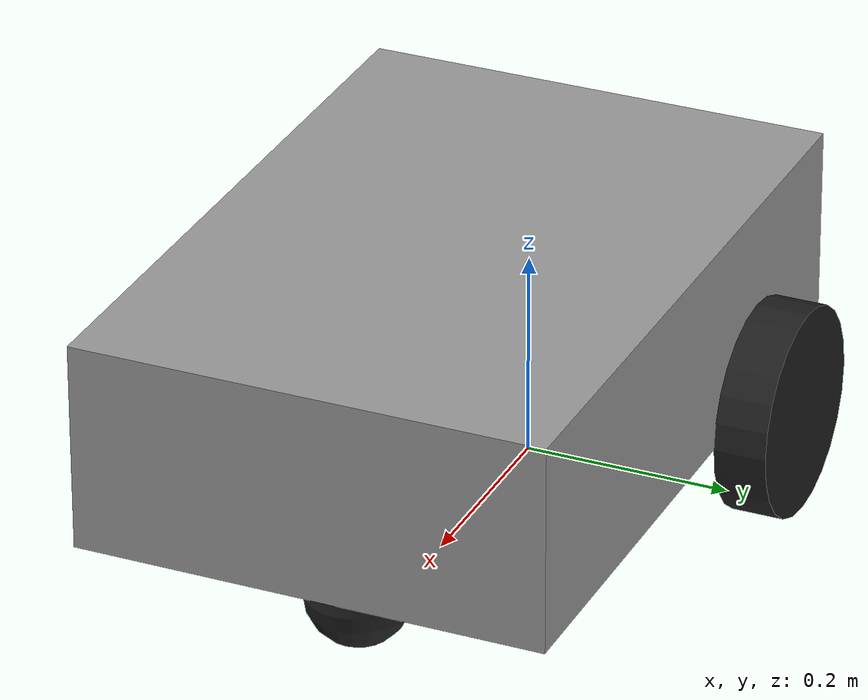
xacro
<?xml version="1.0"?>
<robot xmlns:xacro="http://www.ros.org/wiki/xacro">

    <xacro:property name="base_length" value="0.65" />
    <xacro:property name="base_width" value="0.45" />
    <xacro:property name="base_height" value="0.2" />
    <xacro:property name="wheel_radius" value="0.1" />
    <xacro:property name="wheel_width" value="0.05" />

    <link name="base_footprint" />

    <link name="base_link">
        <visual>
            <geometry>
                <box size="${base_length} ${base_width} ${base_height}" />
            </geometry>
            <origin xyz="${base_length / 4.0} 0 ${base_height / 2.0}" rpy="0 0 0" />
            <material name="grey" />
        </visual>
    </link>

    <xacro:macro name="wheel_macro" params="prefix xyz">
        <link name="${prefix}_wheel_link">
            <visual>
                <geometry>
                    <cylinder radius="${wheel_radius}" length="${wheel_width}" />
                </geometry>
                <origin xyz="0 0 0" rpy="${pi / 2.0} 0 0" />
                <material name="black" />
            </visual>
        </link>

        <joint name="${prefix}_wheel_joint" type="continuous">
            <parent link="base_link" />
            <child link="${prefix}_wheel_link" />
            <origin xyz="${xyz}" rpy="0 0 0" />
            <axis xyz="0 1 0" />
        </joint>
    </xacro:macro>

    <xacro:wheel_macro prefix="right" xyz="0 ${-(base_width + wheel_width) / 2.0} 0"/>
    <xacro:wheel_macro prefix="left" xyz="0 ${(base_width + wheel_width) / 2.0} 0"/>

    <link name="caster_wheel_link">
        <visual>
            <geometry>
                <sphere radius="${wheel_radius / 2.0}" />
            </geometry>
            <origin xyz="0 0 0" rpy="0 0 0" />
            <material name="black" />
        </visual>
    </link>

    <joint name="base_joint" type="fixed">
        <parent link="base_footprint" />
        <child link="base_link" />
        <origin xyz="0 0 ${wheel_radius}" rpy="0 0 0"/>
    </joint>

    <joint name="caster_wheel_joint" type="fixed">
        <parent link="base_link" />
        <child link="caster_wheel_link" />
        <origin xyz="${base_length / 4.0 + base_length / 3.0} 0 ${-wheel_radius / 2.0}" rpy="0 0 0" />
    </joint>

</robot>
